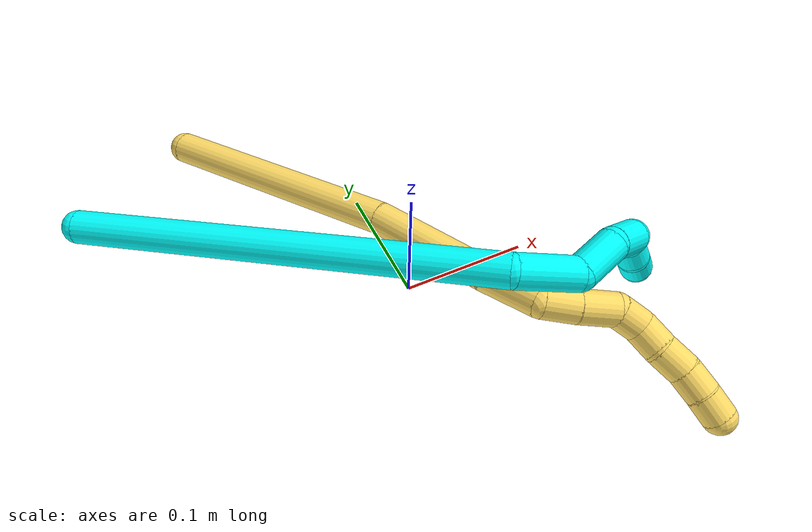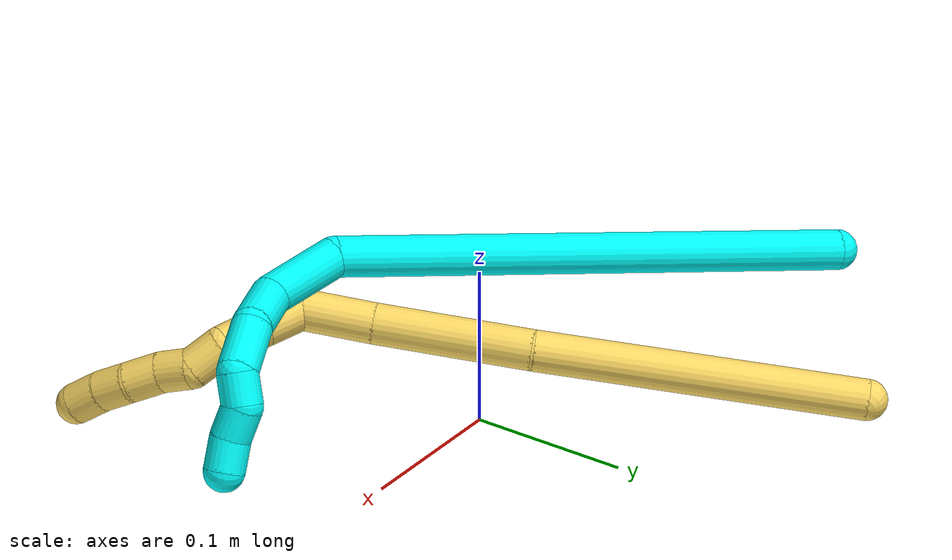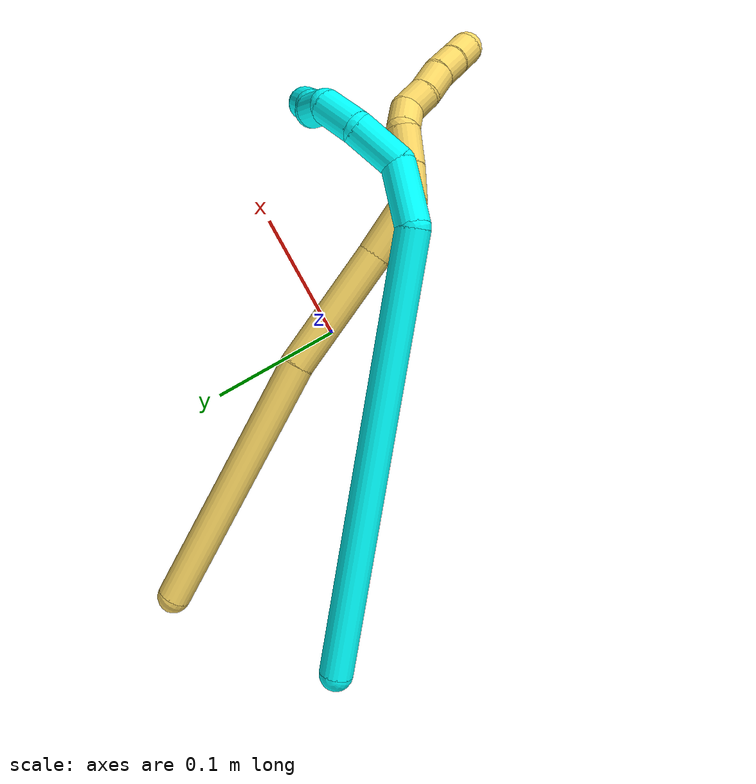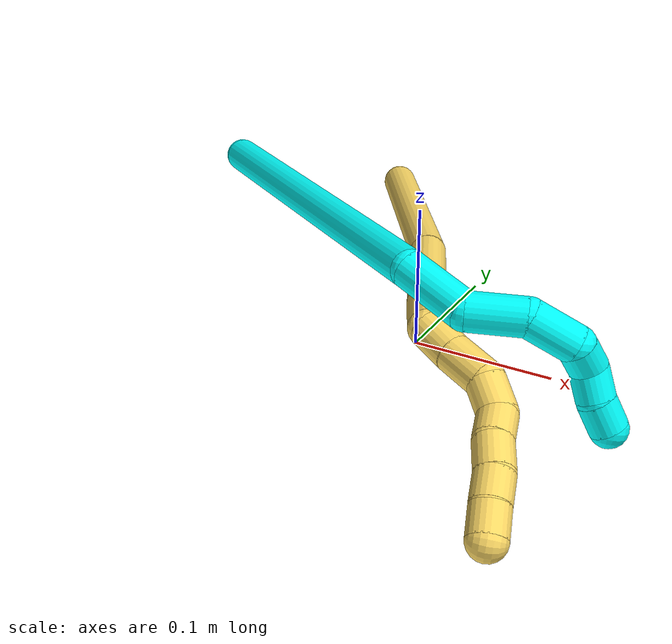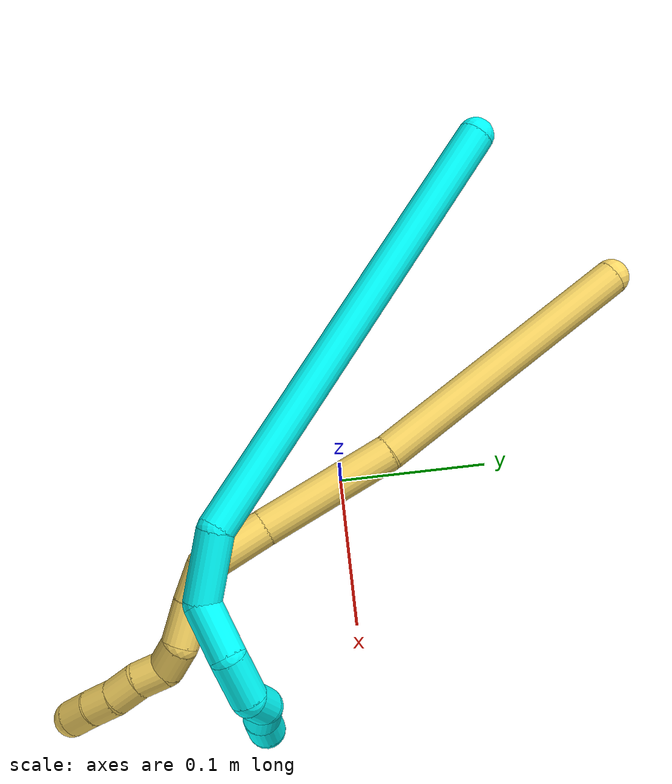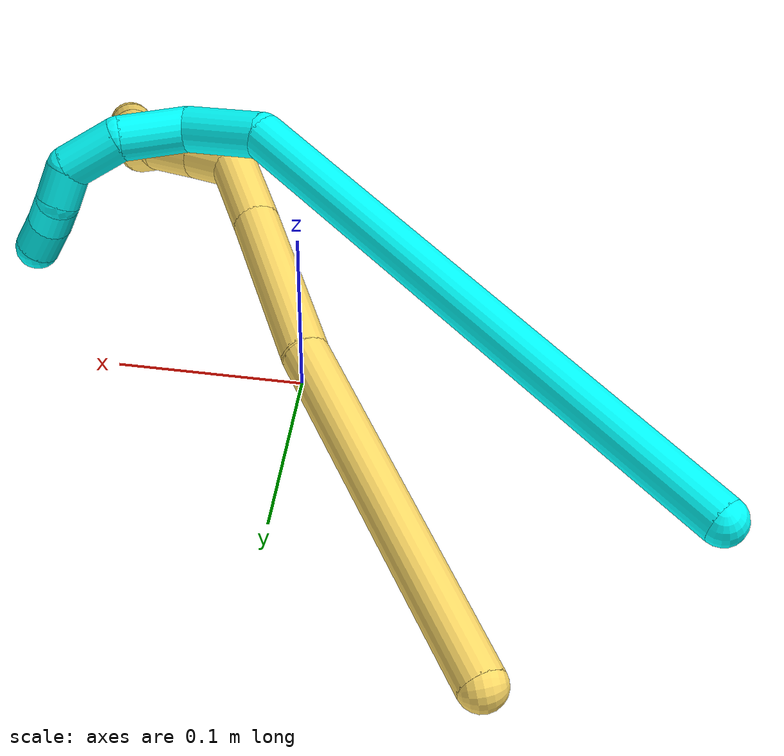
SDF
<sdf version="1.7">
 <world name="default">
  <model name="3">
   <static>0</static>
   <link name="3">
    <collision name="collision-cylinder-e_1_1_4">
     <pose>-0.054603 -0.151221 -0.004338 1.59948 -0.34638 -0.35625</pose>
     <geometry><cylinder><radius>0.0125</radius><length>0.321671</length></cylinder></geometry>
     <surface>
      <friction><ode><mu>1.16</mu><mu2>1.16</mu2><slip1>0</slip1><slip2>0</slip2></ode></friction>
      <contact><ode><kp>1e+06</kp><kd>1</kd><max_vel>0</max_vel><min_depth>0.001</min_depth></ode></contact>
     </surface>
    </collision>
    <visual name="visual-cylinder-e_1_1_4">
     <pose>-0.054603 -0.151221 -0.004338 1.59948 -0.34638 -0.35625</pose>
     <geometry><cylinder><radius>0.0125</radius><length>0.321671</length></cylinder></geometry>
     <material><ambient>0.003922 1 0.996078 1</ambient></material>
    </visual>
    <collision name="collision-cylinder-e_2_4_5">
     <pose>-0.106722 -0.325273 -0.015344 1.85493 0.104048 0.138682</pose>
     <geometry><cylinder><radius>0.0125</radius><length>0.047827</length></cylinder></geometry>
     <surface>
      <friction><ode><mu>1.16</mu><mu2>1.16</mu2><slip1>0</slip1><slip2>0</slip2></ode></friction>
      <contact><ode><kp>1e+06</kp><kd>1</kd><max_vel>0</max_vel><min_depth>0.001</min_depth></ode></contact>
     </surface>
    </collision>
    <visual name="visual-cylinder-e_2_4_5">
     <pose>-0.106722 -0.325273 -0.015344 1.85493 0.104048 0.138682</pose>
     <geometry><cylinder><radius>0.0125</radius><length>0.047827</length></cylinder></geometry>
     <material><ambient>0.003922 1 0.996078 1</ambient></material>
    </visual>
    <collision name="collision-cylinder-e_3_5_6">
     <pose>-0.092621 -0.36258 -0.020013 1.4336 0.671626 0.59053</pose>
     <geometry><cylinder><radius>0.0125</radius><length>0.037339</length></cylinder></geometry>
     <surface>
      <friction><ode><mu>1.16</mu><mu2>1.16</mu2><slip1>0</slip1><slip2>0</slip2></ode></friction>
      <contact><ode><kp>1e+06</kp><kd>1</kd><max_vel>0</max_vel><min_depth>0.001</min_depth></ode></contact>
     </surface>
    </collision>
    <visual name="visual-cylinder-e_3_5_6">
     <pose>-0.092621 -0.36258 -0.020013 1.4336 0.671626 0.59053</pose>
     <geometry><cylinder><radius>0.0125</radius><length>0.037339</length></cylinder></geometry>
     <material><ambient>0.003922 1 0.996078 1</ambient></material>
    </visual>
    <collision name="collision-cylinder-e_4_6_7">
     <pose>-0.070079 -0.387803 -0.023693 2.05698 0.732199 1.13329</pose>
     <geometry><cylinder><radius>0.0125</radius><length>0.032684</length></cylinder></geometry>
     <surface>
      <friction><ode><mu>1.16</mu><mu2>1.16</mu2><slip1>0</slip1><slip2>0</slip2></ode></friction>
      <contact><ode><kp>1e+06</kp><kd>1</kd><max_vel>0</max_vel><min_depth>0.001</min_depth></ode></contact>
     </surface>
    </collision>
    <visual name="visual-cylinder-e_4_6_7">
     <pose>-0.070079 -0.387803 -0.023693 2.05698 0.732199 1.13329</pose>
     <geometry><cylinder><radius>0.0125</radius><length>0.032684</length></cylinder></geometry>
     <material><ambient>0.003922 1 0.996078 1</ambient></material>
    </visual>
    <collision name="collision-cylinder-e_5_7_8">
     <pose>-0.052121 -0.399531 -0.036552 3.00563 0.770399 2.80884</pose>
     <geometry><cylinder><radius>0.0125</radius><length>0.020198</length></cylinder></geometry>
     <surface>
      <friction><ode><mu>1.16</mu><mu2>1.16</mu2><slip1>0</slip1><slip2>0</slip2></ode></friction>
      <contact><ode><kp>1e+06</kp><kd>1</kd><max_vel>0</max_vel><min_depth>0.001</min_depth></ode></contact>
     </surface>
    </collision>
    <visual name="visual-cylinder-e_5_7_8">
     <pose>-0.052121 -0.399531 -0.036552 3.00563 0.770399 2.80884</pose>
     <geometry><cylinder><radius>0.0125</radius><length>0.020198</length></cylinder></geometry>
     <material><ambient>0.003922 1 0.996078 1</ambient></material>
    </visual>
    <collision name="collision-cylinder-e_6_8_9">
     <pose>-0.042845 -0.40403 -0.052909 2.77559 0.224399 1.09374</pose>
     <geometry><cylinder><radius>0.0125</radius><length>0.020161</length></cylinder></geometry>
     <surface>
      <friction><ode><mu>1.16</mu><mu2>1.16</mu2><slip1>0</slip1><slip2>0</slip2></ode></friction>
      <contact><ode><kp>1e+06</kp><kd>1</kd><max_vel>0</max_vel><min_depth>0.001</min_depth></ode></contact>
     </surface>
    </collision>
    <visual name="visual-cylinder-e_6_8_9">
     <pose>-0.042845 -0.40403 -0.052909 2.77559 0.224399 1.09374</pose>
     <geometry><cylinder><radius>0.0125</radius><length>0.020161</length></cylinder></geometry>
     <material><ambient>0.003922 1 0.996078 1</ambient></material>
    </visual>
    <collision name="collision-cylinder-e_7_9_2">
     <pose>-0.035875 -0.410871 -0.070321 2.75801 0.489193 1.81926</pose>
     <geometry><cylinder><radius>0.0125</radius><length>0.020121</length></cylinder></geometry>
     <surface>
      <friction><ode><mu>1.16</mu><mu2>1.16</mu2><slip1>0</slip1><slip2>0</slip2></ode></friction>
      <contact><ode><kp>1e+06</kp><kd>1</kd><max_vel>0</max_vel><min_depth>0.001</min_depth></ode></contact>
     </surface>
    </collision>
    <visual name="visual-cylinder-e_7_9_2">
     <pose>-0.035875 -0.410871 -0.070321 2.75801 0.489193 1.81926</pose>
     <geometry><cylinder><radius>0.0125</radius><length>0.020121</length></cylinder></geometry>
     <material><ambient>0.003922 1 0.996078 1</ambient></material>
    </visual>
    <collision name="collision-sphere-2">
     <pose>-0.031147 -0.414194 -0.078556 0 -0 0</pose>
     <geometry><sphere><radius>0.0125</radius></sphere></geometry>
     <surface>
      <friction><ode><mu>1.16</mu><mu2>1.16</mu2><slip1>0</slip1><slip2>0</slip2></ode></friction>
      <contact><ode><kp>1e+06</kp><kd>1</kd><max_vel>0</max_vel><min_depth>0.001</min_depth></ode></contact>
     </surface>
    </collision>
    <visual name="visual-sphere-2">
     <pose>-0.031147 -0.414194 -0.078556 0 -0 0</pose>
     <geometry><sphere><radius>0.0125</radius></sphere></geometry>
     <material><ambient>0.003922 1 0.996078 1</ambient></material>
    </visual>
    <collision name="collision-sphere-9">
     <pose>-0.040602 -0.407547 -0.062086 0 -0 0</pose>
     <geometry><sphere><radius>0.0125</radius></sphere></geometry>
     <surface>
      <friction><ode><mu>1.16</mu><mu2>1.16</mu2><slip1>0</slip1><slip2>0</slip2></ode></friction>
      <contact><ode><kp>1e+06</kp><kd>1</kd><max_vel>0</max_vel><min_depth>0.001</min_depth></ode></contact>
     </surface>
    </collision>
    <visual name="visual-sphere-9">
     <pose>-0.040602 -0.407547 -0.062086 0 -0 0</pose>
     <geometry><sphere><radius>0.0125</radius></sphere></geometry>
     <material><ambient>0.003922 1 0.996078 1</ambient></material>
    </visual>
    <collision name="collision-sphere-4">
     <pose>-0.109206 -0.302442 -0.008677 0 -0 0</pose>
     <geometry><sphere><radius>0.0125</radius></sphere></geometry>
     <surface>
      <friction><ode><mu>1.16</mu><mu2>1.16</mu2><slip1>0</slip1><slip2>0</slip2></ode></friction>
      <contact><ode><kp>1e+06</kp><kd>1</kd><max_vel>0</max_vel><min_depth>0.001</min_depth></ode></contact>
     </surface>
    </collision>
    <visual name="visual-sphere-4">
     <pose>-0.109206 -0.302442 -0.008677 0 -0 0</pose>
     <geometry><sphere><radius>0.0125</radius></sphere></geometry>
     <material><ambient>0.003922 1 0.996078 1</ambient></material>
    </visual>
    <collision name="collision-sphere-1">
     <geometry><sphere><radius>0.0125</radius></sphere></geometry>
     <surface>
      <friction><ode><mu>1.16</mu><mu2>1.16</mu2><slip1>0</slip1><slip2>0</slip2></ode></friction>
      <contact><ode><kp>1e+06</kp><kd>1</kd><max_vel>0</max_vel><min_depth>0.001</min_depth></ode></contact>
     </surface>
    </collision>
    <visual name="visual-sphere-1">
     <geometry><sphere><radius>0.0125</radius></sphere></geometry>
     <material><ambient>0.003922 1 0.996078 1</ambient></material>
    </visual>
    <collision name="collision-sphere-8">
     <pose>-0.045088 -0.400513 -0.043733 0 -0 0</pose>
     <geometry><sphere><radius>0.0125</radius></sphere></geometry>
     <surface>
      <friction><ode><mu>1.16</mu><mu2>1.16</mu2><slip1>0</slip1><slip2>0</slip2></ode></friction>
      <contact><ode><kp>1e+06</kp><kd>1</kd><max_vel>0</max_vel><min_depth>0.001</min_depth></ode></contact>
     </surface>
    </collision>
    <visual name="visual-sphere-8">
     <pose>-0.045088 -0.400513 -0.043733 0 -0 0</pose>
     <geometry><sphere><radius>0.0125</radius></sphere></geometry>
     <material><ambient>0.003922 1 0.996078 1</ambient></material>
    </visual>
    <collision name="collision-sphere-5">
     <pose>-0.104238 -0.348103 -0.022012 0 -0 0</pose>
     <geometry><sphere><radius>0.0125</radius></sphere></geometry>
     <surface>
      <friction><ode><mu>1.16</mu><mu2>1.16</mu2><slip1>0</slip1><slip2>0</slip2></ode></friction>
      <contact><ode><kp>1e+06</kp><kd>1</kd><max_vel>0</max_vel><min_depth>0.001</min_depth></ode></contact>
     </surface>
    </collision>
    <visual name="visual-sphere-5">
     <pose>-0.104238 -0.348103 -0.022012 0 -0 0</pose>
     <geometry><sphere><radius>0.0125</radius></sphere></geometry>
     <material><ambient>0.003922 1 0.996078 1</ambient></material>
    </visual>
    <collision name="collision-sphere-6">
     <pose>-0.081004 -0.377058 -0.018014 0 -0 0</pose>
     <geometry><sphere><radius>0.0125</radius></sphere></geometry>
     <surface>
      <friction><ode><mu>1.16</mu><mu2>1.16</mu2><slip1>0</slip1><slip2>0</slip2></ode></friction>
      <contact><ode><kp>1e+06</kp><kd>1</kd><max_vel>0</max_vel><min_depth>0.001</min_depth></ode></contact>
     </surface>
    </collision>
    <visual name="visual-sphere-6">
     <pose>-0.081004 -0.377058 -0.018014 0 -0 0</pose>
     <geometry><sphere><radius>0.0125</radius></sphere></geometry>
     <material><ambient>0.003922 1 0.996078 1</ambient></material>
    </visual>
    <collision name="collision-sphere-7">
     <pose>-0.059154 -0.398548 -0.029372 0 -0 0</pose>
     <geometry><sphere><radius>0.0125</radius></sphere></geometry>
     <surface>
      <friction><ode><mu>1.16</mu><mu2>1.16</mu2><slip1>0</slip1><slip2>0</slip2></ode></friction>
      <contact><ode><kp>1e+06</kp><kd>1</kd><max_vel>0</max_vel><min_depth>0.001</min_depth></ode></contact>
     </surface>
    </collision>
    <visual name="visual-sphere-7">
     <pose>-0.059154 -0.398548 -0.029372 0 -0 0</pose>
     <geometry><sphere><radius>0.0125</radius></sphere></geometry>
     <material><ambient>0.003922 1 0.996078 1</ambient></material>
    </visual>
    <inertial>
     <pose>-0.062111 -0.229791 -0.013742 0 -0 0</pose>
     <mass>0.5</mass>
     <inertia>
      <ixx>0.001565</ixx>
      <ixy>0</ixy>
      <ixz>0</ixz>
      <iyy>-0.000679</iyy>
      <iyz>0</iyz>
      <izz>0.003569</izz>
     </inertia>
    </inertial>
   </link>
   <pose>-0.216281 0.11683 0.057859 -0.069125 0.283102 1.22141</pose>
  </model>
  <model name="5">
   <static>0</static>
   <link name="5">
    <collision name="collision-cylinder-e_1_1_4">
     <pose>0.089816 -0.039051 0.022415 1.04973 1.10609 0.686583</pose>
     <geometry><cylinder><radius>0.0125</radius><length>0.200941</length></cylinder></geometry>
     <surface>
      <friction><ode><mu>1.16</mu><mu2>1.16</mu2><slip1>0</slip1><slip2>0</slip2></ode></friction>
      <contact><ode><kp>1e+06</kp><kd>1</kd><max_vel>0</max_vel><min_depth>0.001</min_depth></ode></contact>
     </surface>
    </collision>
    <visual name="visual-cylinder-e_1_1_4">
     <pose>0.089816 -0.039051 0.022415 1.04973 1.10609 0.686583</pose>
     <geometry><cylinder><radius>0.0125</radius><length>0.200941</length></cylinder></geometry>
     <material><ambient>1 0.858824 0.4 1</ambient></material>
    </visual>
    <collision name="collision-cylinder-e_2_4_5">
     <pose>0.22454 -0.094352 0.049941 1.26599 1.20825 0.93754</pose>
     <geometry><cylinder><radius>0.0125</radius><length>0.096061</length></cylinder></geometry>
     <surface>
      <friction><ode><mu>1.16</mu><mu2>1.16</mu2><slip1>0</slip1><slip2>0</slip2></ode></friction>
      <contact><ode><kp>1e+06</kp><kd>1</kd><max_vel>0</max_vel><min_depth>0.001</min_depth></ode></contact>
     </surface>
    </collision>
    <visual name="visual-cylinder-e_2_4_5">
     <pose>0.22454 -0.094352 0.049941 1.26599 1.20825 0.93754</pose>
     <geometry><cylinder><radius>0.0125</radius><length>0.096061</length></cylinder></geometry>
     <material><ambient>1 0.858824 0.4 1</ambient></material>
    </visual>
    <collision name="collision-cylinder-e_3_5_6">
     <pose>0.289853 -0.119063 0.057908 1.24544 1.15823 0.877927</pose>
     <geometry><cylinder><radius>0.0125</radius><length>0.044547</length></cylinder></geometry>
     <surface>
      <friction><ode><mu>1.16</mu><mu2>1.16</mu2><slip1>0</slip1><slip2>0</slip2></ode></friction>
      <contact><ode><kp>1e+06</kp><kd>1</kd><max_vel>0</max_vel><min_depth>0.001</min_depth></ode></contact>
     </surface>
    </collision>
    <visual name="visual-cylinder-e_3_5_6">
     <pose>0.289853 -0.119063 0.057908 1.24544 1.15823 0.877927</pose>
     <geometry><cylinder><radius>0.0125</radius><length>0.044547</length></cylinder></geometry>
     <material><ambient>1 0.858824 0.4 1</ambient></material>
    </visual>
    <collision name="collision-cylinder-e_4_6_7">
     <pose>0.319541 -0.12798 0.069974 0.049351 0.788665 0.02054</pose>
     <geometry><cylinder><radius>0.0125</radius><length>0.02617</length></cylinder></geometry>
     <surface>
      <friction><ode><mu>1.16</mu><mu2>1.16</mu2><slip1>0</slip1><slip2>0</slip2></ode></friction>
      <contact><ode><kp>1e+06</kp><kd>1</kd><max_vel>0</max_vel><min_depth>0.001</min_depth></ode></contact>
     </surface>
    </collision>
    <visual name="visual-cylinder-e_4_6_7">
     <pose>0.319541 -0.12798 0.069974 0.049351 0.788665 0.02054</pose>
     <geometry><cylinder><radius>0.0125</radius><length>0.02617</length></cylinder></geometry>
     <material><ambient>1 0.858824 0.4 1</ambient></material>
    </visual>
    <collision name="collision-cylinder-e_5_7_8">
     <pose>0.338088 -0.129221 0.089767 0.074161 0.717727 0.027829</pose>
     <geometry><cylinder><radius>0.0125</radius><length>0.028174</length></cylinder></geometry>
     <surface>
      <friction><ode><mu>1.16</mu><mu2>1.16</mu2><slip1>0</slip1><slip2>0</slip2></ode></friction>
      <contact><ode><kp>1e+06</kp><kd>1</kd><max_vel>0</max_vel><min_depth>0.001</min_depth></ode></contact>
     </surface>
    </collision>
    <visual name="visual-cylinder-e_5_7_8">
     <pose>0.338088 -0.129221 0.089767 0.074161 0.717727 0.027829</pose>
     <geometry><cylinder><radius>0.0125</radius><length>0.028174</length></cylinder></geometry>
     <material><ambient>1 0.858824 0.4 1</ambient></material>
    </visual>
    <collision name="collision-cylinder-e_6_8_9">
     <pose>0.356324 -0.126306 0.105673 -0.607591 0.944978 -0.317759</pose>
     <geometry><cylinder><radius>0.0125</radius><length>0.022138</length></cylinder></geometry>
     <surface>
      <friction><ode><mu>1.16</mu><mu2>1.16</mu2><slip1>0</slip1><slip2>0</slip2></ode></friction>
      <contact><ode><kp>1e+06</kp><kd>1</kd><max_vel>0</max_vel><min_depth>0.001</min_depth></ode></contact>
     </surface>
    </collision>
    <visual name="visual-cylinder-e_6_8_9">
     <pose>0.356324 -0.126306 0.105673 -0.607591 0.944978 -0.317759</pose>
     <geometry><cylinder><radius>0.0125</radius><length>0.022138</length></cylinder></geometry>
     <material><ambient>1 0.858824 0.4 1</ambient></material>
    </visual>
    <collision name="collision-cylinder-e_7_9_10">
     <pose>0.375458 -0.12195 0.110971 -1.61029 1.5064 -1.54586</pose>
     <geometry><cylinder><radius>0.0125</radius><length>0.020368</length></cylinder></geometry>
     <surface>
      <friction><ode><mu>1.16</mu><mu2>1.16</mu2><slip1>0</slip1><slip2>0</slip2></ode></friction>
      <contact><ode><kp>1e+06</kp><kd>1</kd><max_vel>0</max_vel><min_depth>0.001</min_depth></ode></contact>
     </surface>
    </collision>
    <visual name="visual-cylinder-e_7_9_10">
     <pose>0.375458 -0.12195 0.110971 -1.61029 1.5064 -1.54586</pose>
     <geometry><cylinder><radius>0.0125</radius><length>0.020368</length></cylinder></geometry>
     <material><ambient>1 0.858824 0.4 1</ambient></material>
    </visual>
    <collision name="collision-cylinder-e_8_10_11">
     <pose>0.396068 -0.119699 0.112944 -0.673594 1.33065 -0.536255</pose>
     <geometry><cylinder><radius>0.0125</radius><length>0.021511</length></cylinder></geometry>
     <surface>
      <friction><ode><mu>1.16</mu><mu2>1.16</mu2><slip1>0</slip1><slip2>0</slip2></ode></friction>
      <contact><ode><kp>1e+06</kp><kd>1</kd><max_vel>0</max_vel><min_depth>0.001</min_depth></ode></contact>
     </surface>
    </collision>
    <visual name="visual-cylinder-e_8_10_11">
     <pose>0.396068 -0.119699 0.112944 -0.673594 1.33065 -0.536255</pose>
     <geometry><cylinder><radius>0.0125</radius><length>0.021511</length></cylinder></geometry>
     <material><ambient>1 0.858824 0.4 1</ambient></material>
    </visual>
    <collision name="collision-cylinder-e_9_11_12">
     <pose>0.416261 -0.11583 0.115237 -1.44247 1.3398 -1.21667</pose>
     <geometry><cylinder><radius>0.0125</radius><length>0.020023</length></cylinder></geometry>
     <surface>
      <friction><ode><mu>1.16</mu><mu2>1.16</mu2><slip1>0</slip1><slip2>0</slip2></ode></friction>
      <contact><ode><kp>1e+06</kp><kd>1</kd><max_vel>0</max_vel><min_depth>0.001</min_depth></ode></contact>
     </surface>
    </collision>
    <visual name="visual-cylinder-e_9_11_12">
     <pose>0.416261 -0.11583 0.115237 -1.44247 1.3398 -1.21667</pose>
     <geometry><cylinder><radius>0.0125</radius><length>0.020023</length></cylinder></geometry>
     <material><ambient>1 0.858824 0.4 1</ambient></material>
    </visual>
    <collision name="collision-cylinder-e_10_12_2">
     <pose>0.435431 -0.110196 0.116261 -1.3568 1.22086 -1.02684</pose>
     <geometry><cylinder><radius>0.0125</radius><length>0.020066</length></cylinder></geometry>
     <surface>
      <friction><ode><mu>1.16</mu><mu2>1.16</mu2><slip1>0</slip1><slip2>0</slip2></ode></friction>
      <contact><ode><kp>1e+06</kp><kd>1</kd><max_vel>0</max_vel><min_depth>0.001</min_depth></ode></contact>
     </surface>
    </collision>
    <visual name="visual-cylinder-e_10_12_2">
     <pose>0.435431 -0.110196 0.116261 -1.3568 1.22086 -1.02684</pose>
     <geometry><cylinder><radius>0.0125</radius><length>0.020066</length></cylinder></geometry>
     <material><ambient>1 0.858824 0.4 1</ambient></material>
    </visual>
    <collision name="collision-sphere-2">
     <pose>0.444857 -0.106834 0.116991 0 -0 0</pose>
     <geometry><sphere><radius>0.0125</radius></sphere></geometry>
     <surface>
      <friction><ode><mu>1.16</mu><mu2>1.16</mu2><slip1>0</slip1><slip2>0</slip2></ode></friction>
      <contact><ode><kp>1e+06</kp><kd>1</kd><max_vel>0</max_vel><min_depth>0.001</min_depth></ode></contact>
     </surface>
    </collision>
    <visual name="visual-sphere-2">
     <pose>0.444857 -0.106834 0.116991 0 -0 0</pose>
     <geometry><sphere><radius>0.0125</radius></sphere></geometry>
     <material><ambient>1 0.858824 0.4 1</ambient></material>
    </visual>
    <collision name="collision-sphere-12">
     <pose>0.426006 -0.113557 0.11553 0 -0 0</pose>
     <geometry><sphere><radius>0.0125</radius></sphere></geometry>
     <surface>
      <friction><ode><mu>1.16</mu><mu2>1.16</mu2><slip1>0</slip1><slip2>0</slip2></ode></friction>
      <contact><ode><kp>1e+06</kp><kd>1</kd><max_vel>0</max_vel><min_depth>0.001</min_depth></ode></contact>
     </surface>
    </collision>
    <visual name="visual-sphere-12">
     <pose>0.426006 -0.113557 0.11553 0 -0 0</pose>
     <geometry><sphere><radius>0.0125</radius></sphere></geometry>
     <material><ambient>1 0.858824 0.4 1</ambient></material>
    </visual>
    <collision name="collision-sphere-11">
     <pose>0.406515 -0.118103 0.114944 0 -0 0</pose>
     <geometry><sphere><radius>0.0125</radius></sphere></geometry>
     <surface>
      <friction><ode><mu>1.16</mu><mu2>1.16</mu2><slip1>0</slip1><slip2>0</slip2></ode></friction>
      <contact><ode><kp>1e+06</kp><kd>1</kd><max_vel>0</max_vel><min_depth>0.001</min_depth></ode></contact>
     </surface>
    </collision>
    <visual name="visual-sphere-11">
     <pose>0.406515 -0.118103 0.114944 0 -0 0</pose>
     <geometry><sphere><radius>0.0125</radius></sphere></geometry>
     <material><ambient>1 0.858824 0.4 1</ambient></material>
    </visual>
    <collision name="collision-sphere-10">
     <pose>0.385621 -0.121295 0.110945 0 -0 0</pose>
     <geometry><sphere><radius>0.0125</radius></sphere></geometry>
     <surface>
      <friction><ode><mu>1.16</mu><mu2>1.16</mu2><slip1>0</slip1><slip2>0</slip2></ode></friction>
      <contact><ode><kp>1e+06</kp><kd>1</kd><max_vel>0</max_vel><min_depth>0.001</min_depth></ode></contact>
     </surface>
    </collision>
    <visual name="visual-sphere-10">
     <pose>0.385621 -0.121295 0.110945 0 -0 0</pose>
     <geometry><sphere><radius>0.0125</radius></sphere></geometry>
     <material><ambient>1 0.858824 0.4 1</ambient></material>
    </visual>
    <collision name="collision-sphere-9">
     <pose>0.365295 -0.122605 0.110997 0 -0 0</pose>
     <geometry><sphere><radius>0.0125</radius></sphere></geometry>
     <surface>
      <friction><ode><mu>1.16</mu><mu2>1.16</mu2><slip1>0</slip1><slip2>0</slip2></ode></friction>
      <contact><ode><kp>1e+06</kp><kd>1</kd><max_vel>0</max_vel><min_depth>0.001</min_depth></ode></contact>
     </surface>
    </collision>
    <visual name="visual-sphere-9">
     <pose>0.365295 -0.122605 0.110997 0 -0 0</pose>
     <geometry><sphere><radius>0.0125</radius></sphere></geometry>
     <material><ambient>1 0.858824 0.4 1</ambient></material>
    </visual>
    <collision name="collision-sphere-4">
     <pose>0.179632 -0.078103 0.044829 0 -0 0</pose>
     <geometry><sphere><radius>0.0125</radius></sphere></geometry>
     <surface>
      <friction><ode><mu>1.16</mu><mu2>1.16</mu2><slip1>0</slip1><slip2>0</slip2></ode></friction>
      <contact><ode><kp>1e+06</kp><kd>1</kd><max_vel>0</max_vel><min_depth>0.001</min_depth></ode></contact>
     </surface>
    </collision>
    <visual name="visual-sphere-4">
     <pose>0.179632 -0.078103 0.044829 0 -0 0</pose>
     <geometry><sphere><radius>0.0125</radius></sphere></geometry>
     <material><ambient>1 0.858824 0.4 1</ambient></material>
    </visual>
    <collision name="collision-sphere-1">
     <geometry><sphere><radius>0.0125</radius></sphere></geometry>
     <surface>
      <friction><ode><mu>1.16</mu><mu2>1.16</mu2><slip1>0</slip1><slip2>0</slip2></ode></friction>
      <contact><ode><kp>1e+06</kp><kd>1</kd><max_vel>0</max_vel><min_depth>0.001</min_depth></ode></contact>
     </surface>
    </collision>
    <visual name="visual-sphere-1">
     <geometry><sphere><radius>0.0125</radius></sphere></geometry>
     <material><ambient>1 0.858824 0.4 1</ambient></material>
    </visual>
    <collision name="collision-sphere-8">
     <pose>0.347353 -0.130008 0.10035 0 -0 0</pose>
     <geometry><sphere><radius>0.0125</radius></sphere></geometry>
     <surface>
      <friction><ode><mu>1.16</mu><mu2>1.16</mu2><slip1>0</slip1><slip2>0</slip2></ode></friction>
      <contact><ode><kp>1e+06</kp><kd>1</kd><max_vel>0</max_vel><min_depth>0.001</min_depth></ode></contact>
     </surface>
    </collision>
    <visual name="visual-sphere-8">
     <pose>0.347353 -0.130008 0.10035 0 -0 0</pose>
     <geometry><sphere><radius>0.0125</radius></sphere></geometry>
     <material><ambient>1 0.858824 0.4 1</ambient></material>
    </visual>
    <collision name="collision-sphere-5">
     <pose>0.269449 -0.110601 0.055053 0 -0 0</pose>
     <geometry><sphere><radius>0.0125</radius></sphere></geometry>
     <surface>
      <friction><ode><mu>1.16</mu><mu2>1.16</mu2><slip1>0</slip1><slip2>0</slip2></ode></friction>
      <contact><ode><kp>1e+06</kp><kd>1</kd><max_vel>0</max_vel><min_depth>0.001</min_depth></ode></contact>
     </surface>
    </collision>
    <visual name="visual-sphere-5">
     <pose>0.269449 -0.110601 0.055053 0 -0 0</pose>
     <geometry><sphere><radius>0.0125</radius></sphere></geometry>
     <material><ambient>1 0.858824 0.4 1</ambient></material>
    </visual>
    <collision name="collision-sphere-6">
     <pose>0.310258 -0.127525 0.060763 0 -0 0</pose>
     <geometry><sphere><radius>0.0125</radius></sphere></geometry>
     <surface>
      <friction><ode><mu>1.16</mu><mu2>1.16</mu2><slip1>0</slip1><slip2>0</slip2></ode></friction>
      <contact><ode><kp>1e+06</kp><kd>1</kd><max_vel>0</max_vel><min_depth>0.001</min_depth></ode></contact>
     </surface>
    </collision>
    <visual name="visual-sphere-6">
     <pose>0.310258 -0.127525 0.060763 0 -0 0</pose>
     <geometry><sphere><radius>0.0125</radius></sphere></geometry>
     <material><ambient>1 0.858824 0.4 1</ambient></material>
    </visual>
    <collision name="collision-sphere-7">
     <pose>0.328824 -0.128435 0.079185 0 -0 0</pose>
     <geometry><sphere><radius>0.0125</radius></sphere></geometry>
     <surface>
      <friction><ode><mu>1.16</mu><mu2>1.16</mu2><slip1>0</slip1><slip2>0</slip2></ode></friction>
      <contact><ode><kp>1e+06</kp><kd>1</kd><max_vel>0</max_vel><min_depth>0.001</min_depth></ode></contact>
     </surface>
    </collision>
    <visual name="visual-sphere-7">
     <pose>0.328824 -0.128435 0.079185 0 -0 0</pose>
     <geometry><sphere><radius>0.0125</radius></sphere></geometry>
     <material><ambient>1 0.858824 0.4 1</ambient></material>
    </visual>
    <inertial>
     <pose>0.22309 -0.08318 0.055822 0 -0 0</pose>
     <mass>0.5</mass>
     <inertia><ixx>0.000514</ixx><ixy>0</ixy><ixz>0</ixz><iyy>0.0009</iyy><iyz>0</iyz><izz>-0.0004</izz></inertia>
    </inertial>
   </link>
   <pose>-0.115723 0.200343 0.025419 -1.68102 0.235917 -1.27274</pose>
  </model>
 </world>
</sdf>
